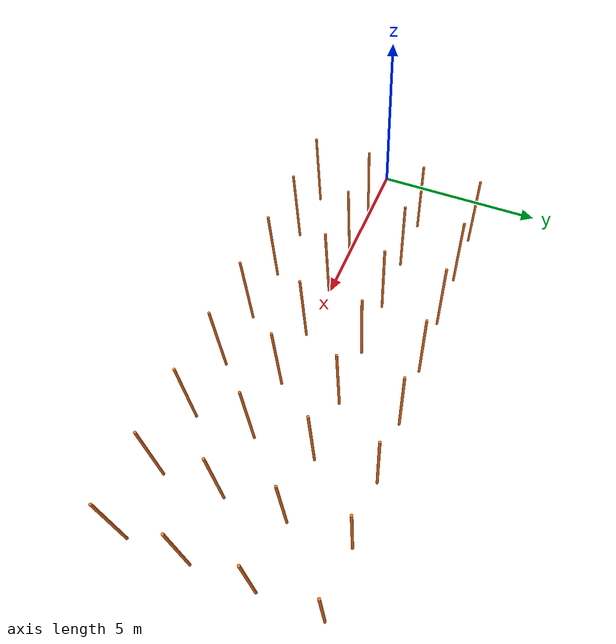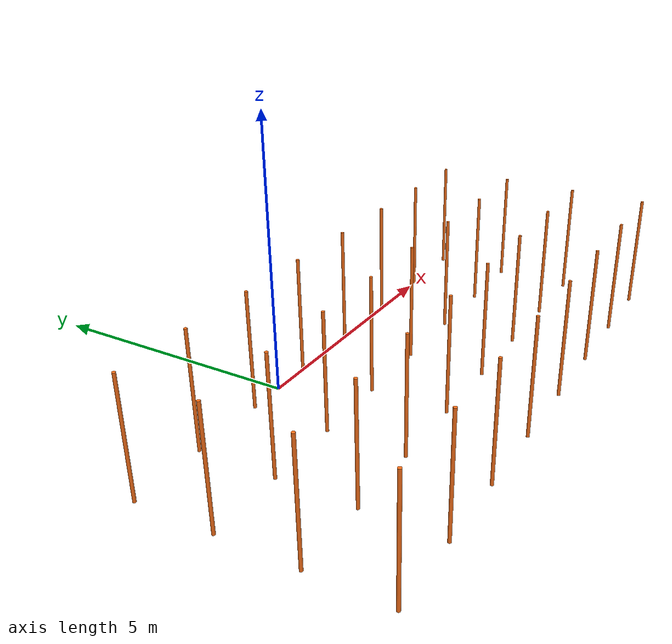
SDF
<?xml version="1.0"?>
<!-- Visual-only reference pole grid (2 m spacing) so translation is visible on
     the chase-cam video. No collision elements: the robot passes through freely. -->
<sdf version="1.6">
  <model name="demo_grid">
    <static>true</static>
    <link name="link">
      <visual name="pole_0">
        <pose>-1 -3 -1.5 0 0 0</pose>
        <geometry><cylinder><radius>0.04</radius><length>3.0</length></cylinder></geometry>
        <material><ambient>1.0 0.45 0.1 1</ambient><diffuse>1.0 0.45 0.1 1</diffuse></material>
      </visual>
      <visual name="pole_1">
        <pose>-1 -1 -1.5 0 0 0</pose>
        <geometry><cylinder><radius>0.04</radius><length>3.0</length></cylinder></geometry>
        <material><ambient>1.0 0.45 0.1 1</ambient><diffuse>1.0 0.45 0.1 1</diffuse></material>
      </visual>
      <visual name="pole_2">
        <pose>-1 1 -1.5 0 0 0</pose>
        <geometry><cylinder><radius>0.04</radius><length>3.0</length></cylinder></geometry>
        <material><ambient>1.0 0.45 0.1 1</ambient><diffuse>1.0 0.45 0.1 1</diffuse></material>
      </visual>
      <visual name="pole_3">
        <pose>-1 3 -1.5 0 0 0</pose>
        <geometry><cylinder><radius>0.04</radius><length>3.0</length></cylinder></geometry>
        <material><ambient>1.0 0.45 0.1 1</ambient><diffuse>1.0 0.45 0.1 1</diffuse></material>
      </visual>
      <visual name="pole_4">
        <pose>1 -3 -1.5 0 0 0</pose>
        <geometry><cylinder><radius>0.04</radius><length>3.0</length></cylinder></geometry>
        <material><ambient>1.0 0.45 0.1 1</ambient><diffuse>1.0 0.45 0.1 1</diffuse></material>
      </visual>
      <visual name="pole_5">
        <pose>1 -1 -1.5 0 0 0</pose>
        <geometry><cylinder><radius>0.04</radius><length>3.0</length></cylinder></geometry>
        <material><ambient>1.0 0.45 0.1 1</ambient><diffuse>1.0 0.45 0.1 1</diffuse></material>
      </visual>
      <visual name="pole_6">
        <pose>1 1 -1.5 0 0 0</pose>
        <geometry><cylinder><radius>0.04</radius><length>3.0</length></cylinder></geometry>
        <material><ambient>1.0 0.45 0.1 1</ambient><diffuse>1.0 0.45 0.1 1</diffuse></material>
      </visual>
      <visual name="pole_7">
        <pose>1 3 -1.5 0 0 0</pose>
        <geometry><cylinder><radius>0.04</radius><length>3.0</length></cylinder></geometry>
        <material><ambient>1.0 0.45 0.1 1</ambient><diffuse>1.0 0.45 0.1 1</diffuse></material>
      </visual>
      <visual name="pole_8">
        <pose>3 -3 -1.5 0 0 0</pose>
        <geometry><cylinder><radius>0.04</radius><length>3.0</length></cylinder></geometry>
        <material><ambient>1.0 0.45 0.1 1</ambient><diffuse>1.0 0.45 0.1 1</diffuse></material>
      </visual>
      <visual name="pole_9">
        <pose>3 -1 -1.5 0 0 0</pose>
        <geometry><cylinder><radius>0.04</radius><length>3.0</length></cylinder></geometry>
        <material><ambient>1.0 0.45 0.1 1</ambient><diffuse>1.0 0.45 0.1 1</diffuse></material>
      </visual>
      <visual name="pole_10">
        <pose>3 1 -1.5 0 0 0</pose>
        <geometry><cylinder><radius>0.04</radius><length>3.0</length></cylinder></geometry>
        <material><ambient>1.0 0.45 0.1 1</ambient><diffuse>1.0 0.45 0.1 1</diffuse></material>
      </visual>
      <visual name="pole_11">
        <pose>3 3 -1.5 0 0 0</pose>
        <geometry><cylinder><radius>0.04</radius><length>3.0</length></cylinder></geometry>
        <material><ambient>1.0 0.45 0.1 1</ambient><diffuse>1.0 0.45 0.1 1</diffuse></material>
      </visual>
      <visual name="pole_12">
        <pose>5 -3 -1.5 0 0 0</pose>
        <geometry><cylinder><radius>0.04</radius><length>3.0</length></cylinder></geometry>
        <material><ambient>1.0 0.45 0.1 1</ambient><diffuse>1.0 0.45 0.1 1</diffuse></material>
      </visual>
      <visual name="pole_13">
        <pose>5 -1 -1.5 0 0 0</pose>
        <geometry><cylinder><radius>0.04</radius><length>3.0</length></cylinder></geometry>
        <material><ambient>1.0 0.45 0.1 1</ambient><diffuse>1.0 0.45 0.1 1</diffuse></material>
      </visual>
      <visual name="pole_14">
        <pose>5 1 -1.5 0 0 0</pose>
        <geometry><cylinder><radius>0.04</radius><length>3.0</length></cylinder></geometry>
        <material><ambient>1.0 0.45 0.1 1</ambient><diffuse>1.0 0.45 0.1 1</diffuse></material>
      </visual>
      <visual name="pole_15">
        <pose>5 3 -1.5 0 0 0</pose>
        <geometry><cylinder><radius>0.04</radius><length>3.0</length></cylinder></geometry>
        <material><ambient>1.0 0.45 0.1 1</ambient><diffuse>1.0 0.45 0.1 1</diffuse></material>
      </visual>
      <visual name="pole_16">
        <pose>7 -3 -1.5 0 0 0</pose>
        <geometry><cylinder><radius>0.04</radius><length>3.0</length></cylinder></geometry>
        <material><ambient>1.0 0.45 0.1 1</ambient><diffuse>1.0 0.45 0.1 1</diffuse></material>
      </visual>
      <visual name="pole_17">
        <pose>7 -1 -1.5 0 0 0</pose>
        <geometry><cylinder><radius>0.04</radius><length>3.0</length></cylinder></geometry>
        <material><ambient>1.0 0.45 0.1 1</ambient><diffuse>1.0 0.45 0.1 1</diffuse></material>
      </visual>
      <visual name="pole_18">
        <pose>7 1 -1.5 0 0 0</pose>
        <geometry><cylinder><radius>0.04</radius><length>3.0</length></cylinder></geometry>
        <material><ambient>1.0 0.45 0.1 1</ambient><diffuse>1.0 0.45 0.1 1</diffuse></material>
      </visual>
      <visual name="pole_19">
        <pose>7 3 -1.5 0 0 0</pose>
        <geometry><cylinder><radius>0.04</radius><length>3.0</length></cylinder></geometry>
        <material><ambient>1.0 0.45 0.1 1</ambient><diffuse>1.0 0.45 0.1 1</diffuse></material>
      </visual>
      <visual name="pole_20">
        <pose>9 -3 -1.5 0 0 0</pose>
        <geometry><cylinder><radius>0.04</radius><length>3.0</length></cylinder></geometry>
        <material><ambient>1.0 0.45 0.1 1</ambient><diffuse>1.0 0.45 0.1 1</diffuse></material>
      </visual>
      <visual name="pole_21">
        <pose>9 -1 -1.5 0 0 0</pose>
        <geometry><cylinder><radius>0.04</radius><length>3.0</length></cylinder></geometry>
        <material><ambient>1.0 0.45 0.1 1</ambient><diffuse>1.0 0.45 0.1 1</diffuse></material>
      </visual>
      <visual name="pole_22">
        <pose>9 1 -1.5 0 0 0</pose>
        <geometry><cylinder><radius>0.04</radius><length>3.0</length></cylinder></geometry>
        <material><ambient>1.0 0.45 0.1 1</ambient><diffuse>1.0 0.45 0.1 1</diffuse></material>
      </visual>
      <visual name="pole_23">
        <pose>9 3 -1.5 0 0 0</pose>
        <geometry><cylinder><radius>0.04</radius><length>3.0</length></cylinder></geometry>
        <material><ambient>1.0 0.45 0.1 1</ambient><diffuse>1.0 0.45 0.1 1</diffuse></material>
      </visual>
      <visual name="pole_24">
        <pose>11 -3 -1.5 0 0 0</pose>
        <geometry><cylinder><radius>0.04</radius><length>3.0</length></cylinder></geometry>
        <material><ambient>1.0 0.45 0.1 1</ambient><diffuse>1.0 0.45 0.1 1</diffuse></material>
      </visual>
      <visual name="pole_25">
        <pose>11 -1 -1.5 0 0 0</pose>
        <geometry><cylinder><radius>0.04</radius><length>3.0</length></cylinder></geometry>
        <material><ambient>1.0 0.45 0.1 1</ambient><diffuse>1.0 0.45 0.1 1</diffuse></material>
      </visual>
      <visual name="pole_26">
        <pose>11 1 -1.5 0 0 0</pose>
        <geometry><cylinder><radius>0.04</radius><length>3.0</length></cylinder></geometry>
        <material><ambient>1.0 0.45 0.1 1</ambient><diffuse>1.0 0.45 0.1 1</diffuse></material>
      </visual>
      <visual name="pole_27">
        <pose>11 3 -1.5 0 0 0</pose>
        <geometry><cylinder><radius>0.04</radius><length>3.0</length></cylinder></geometry>
        <material><ambient>1.0 0.45 0.1 1</ambient><diffuse>1.0 0.45 0.1 1</diffuse></material>
      </visual>
      <visual name="pole_28">
        <pose>13 -3 -1.5 0 0 0</pose>
        <geometry><cylinder><radius>0.04</radius><length>3.0</length></cylinder></geometry>
        <material><ambient>1.0 0.45 0.1 1</ambient><diffuse>1.0 0.45 0.1 1</diffuse></material>
      </visual>
      <visual name="pole_29">
        <pose>13 -1 -1.5 0 0 0</pose>
        <geometry><cylinder><radius>0.04</radius><length>3.0</length></cylinder></geometry>
        <material><ambient>1.0 0.45 0.1 1</ambient><diffuse>1.0 0.45 0.1 1</diffuse></material>
      </visual>
      <visual name="pole_30">
        <pose>13 1 -1.5 0 0 0</pose>
        <geometry><cylinder><radius>0.04</radius><length>3.0</length></cylinder></geometry>
        <material><ambient>1.0 0.45 0.1 1</ambient><diffuse>1.0 0.45 0.1 1</diffuse></material>
      </visual>
      <visual name="pole_31">
        <pose>13 3 -1.5 0 0 0</pose>
        <geometry><cylinder><radius>0.04</radius><length>3.0</length></cylinder></geometry>
        <material><ambient>1.0 0.45 0.1 1</ambient><diffuse>1.0 0.45 0.1 1</diffuse></material>
      </visual>
    </link>
  </model>
</sdf>
